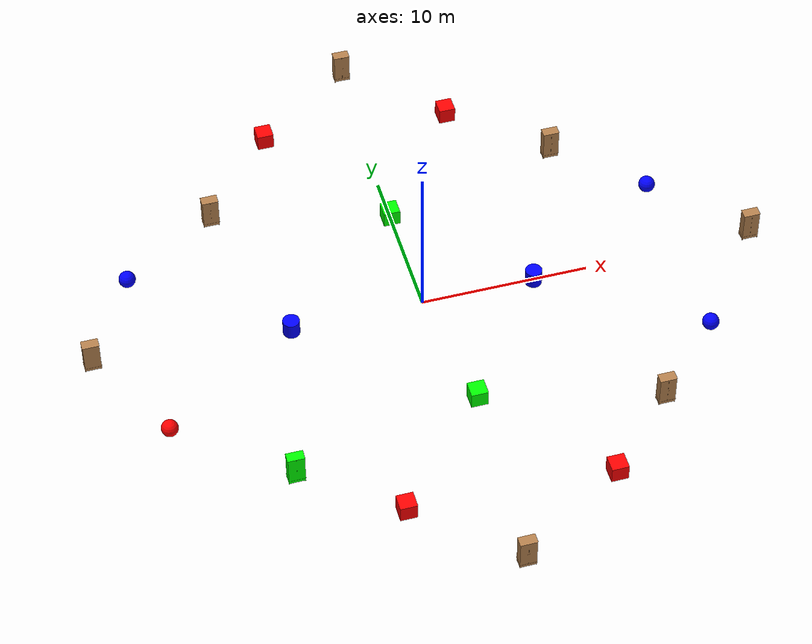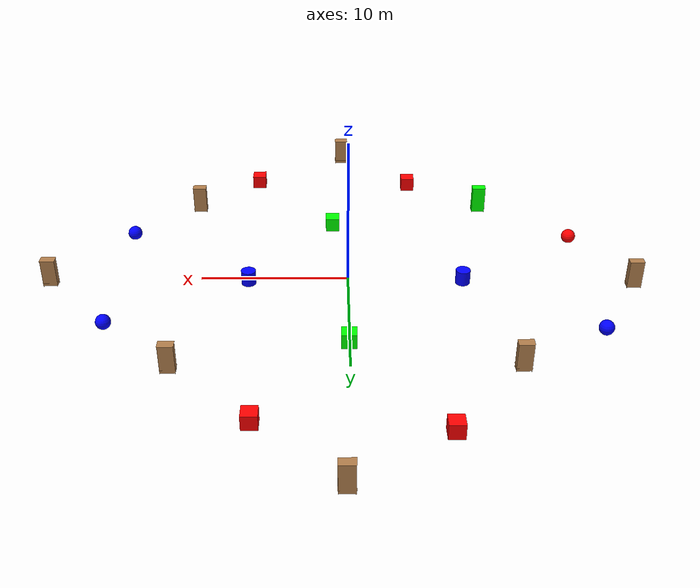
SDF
<?xml version='1.0'?>
<sdf version='1.6'>
  <model name='env3'>
    <link name='link_0'>
      <inertial>
        <mass>1</mass>
        <inertia>
          <ixx>0.145833</ixx>
          <ixy>0</ixy>
          <ixz>0</ixz>
          <iyy>0.145833</iyy>
          <iyz>0</iyz>
          <izz>0.125</izz>
        </inertia>
      </inertial>
      <pose frame=''>-7.84532 0.155592 0.2 0 -0 0</pose>
      <visual name='visual'>
        <pose frame=''>0 0 0 0 -0 0</pose>
        <geometry>
          <cylinder>
            <radius>0.5</radius>
            <length>1</length>
          </cylinder>
        </geometry>
          <material> <!-- Blue -->
            <ambient>0 0 1 1</ambient>
            <diffuse>0 0 1 1</diffuse>
            <specular>0 0 0 0</specular>
            <emissive>0 0 0 0</emissive>
          </material>
        <transparency>0</transparency>
        <cast_shadows>1</cast_shadows>
      </visual>
      <collision name='collision'>
        <laser_retro>0</laser_retro>
        <max_contacts>10</max_contacts>
        <pose frame=''>0 0 0 0 -0 0</pose>
        <geometry>
          <cylinder>
            <radius>0.5</radius>
            <length>1</length>
          </cylinder>
        </geometry>
        <surface>
          <friction>
            <ode>
              <mu>1</mu>
              <mu2>1</mu2>
              <fdir1>0 0 0</fdir1>
              <slip1>0</slip1>
              <slip2>0</slip2>
            </ode>
            <torsional>
              <coefficient>1</coefficient>
              <patch_radius>0</patch_radius>
              <surface_radius>0</surface_radius>
              <use_patch_radius>1</use_patch_radius>
              <ode>
                <slip>0</slip>
              </ode>
            </torsional>
          </friction>
          <bounce>
            <restitution_coefficient>0</restitution_coefficient>
            <threshold>1e+06</threshold>
          </bounce>
          <contact>
            <collide_without_contact>0</collide_without_contact>
            <collide_without_contact_bitmask>1</collide_without_contact_bitmask>
            <collide_bitmask>1</collide_bitmask>
            <ode>
              <soft_cfm>0</soft_cfm>
              <soft_erp>0.2</soft_erp>
              <kp>1e+13</kp>
              <kd>1</kd>
              <max_vel>0.01</max_vel>
              <min_depth>0</min_depth>
            </ode>
            <bullet>
              <split_impulse>1</split_impulse>
              <split_impulse_penetration_threshold>-0.01</split_impulse_penetration_threshold>
              <soft_cfm>0</soft_cfm>
              <soft_erp>0.2</soft_erp>
              <kp>1e+13</kp>
              <kd>1</kd>
            </bullet>
          </contact>
        </surface>
      </collision>
    </link>
    <link name='link_1'>
      <inertial>
        <mass>1</mass>
        <inertia>
          <ixx>0.145833</ixx>
          <ixy>0</ixy>
          <ixz>0</ixz>
          <iyy>0.145833</iyy>
          <iyz>0</iyz>
          <izz>0.125</izz>
        </inertia>
      </inertial>
      <pose frame=''>6.80226 0.097561 0.2 0 -0 0</pose>
      <visual name='visual'>
        <pose frame=''>0 0 0 0 -0 0</pose>
        <geometry>
          <cylinder>
            <radius>0.5</radius>
            <length>1</length>
          </cylinder>
        </geometry>
          <material> <!-- Blue -->
            <ambient>0 0 1 1</ambient>
            <diffuse>0 0 1 1</diffuse>
            <specular>0 0 0 0</specular>
            <emissive>0 0 0 0</emissive>
          </material>
        <transparency>0</transparency>
        <cast_shadows>1</cast_shadows>
      </visual>
      <collision name='collision'>
        <laser_retro>0</laser_retro>
        <max_contacts>10</max_contacts>
        <pose frame=''>0 0 0 0 -0 0</pose>
        <geometry>
          <cylinder>
            <radius>0.5</radius>
            <length>1</length>
          </cylinder>
        </geometry>
        <surface>
          <friction>
            <ode>
              <mu>1</mu>
              <mu2>1</mu2>
              <fdir1>0 0 0</fdir1>
              <slip1>0</slip1>
              <slip2>0</slip2>
            </ode>
            <torsional>
              <coefficient>1</coefficient>
              <patch_radius>0</patch_radius>
              <surface_radius>0</surface_radius>
              <use_patch_radius>1</use_patch_radius>
              <ode>
                <slip>0</slip>
              </ode>
            </torsional>
          </friction>
          <bounce>
            <restitution_coefficient>0</restitution_coefficient>
            <threshold>1e+06</threshold>
          </bounce>
          <contact>
            <collide_without_contact>0</collide_without_contact>
            <collide_without_contact_bitmask>1</collide_without_contact_bitmask>
            <collide_bitmask>1</collide_bitmask>
            <ode>
              <soft_cfm>0</soft_cfm>
              <soft_erp>0.2</soft_erp>
              <kp>1e+13</kp>
              <kd>1</kd>
              <max_vel>0.01</max_vel>
              <min_depth>0</min_depth>
            </ode>
            <bullet>
              <split_impulse>1</split_impulse>
              <split_impulse_penetration_threshold>-0.01</split_impulse_penetration_threshold>
              <soft_cfm>0</soft_cfm>
              <soft_erp>0.2</soft_erp>
              <kp>1e+13</kp>
              <kd>1</kd>
            </bullet>
          </contact>
        </surface>
      </collision>
    </link>
    <link name='link_10'>
      <inertial>
        <mass>1</mass>
        <inertia>
          <ixx>0.1</ixx>
          <ixy>0</ixy>
          <ixz>0</ixz>
          <iyy>0.1</iyy>
          <iyz>0</iyz>
          <izz>0.1</izz>
        </inertia>
      </inertial>
      <pose frame=''>15.6812 5.44137 0.2 0 -0 0</pose>
      <visual name='visual'>
        <pose frame=''>0 0 0 0 -0 0</pose>
        <geometry>
          <sphere>
            <radius>0.5</radius>
          </sphere>
        </geometry>
          <material> <!-- Blue -->
            <ambient>0 0 1 1</ambient>
            <diffuse>0 0 1 1</diffuse>
            <specular>0 0 0 0</specular>
            <emissive>0 0 0 0</emissive>
          </material>
        <transparency>0</transparency>
        <cast_shadows>1</cast_shadows>
      </visual>
      <collision name='collision'>
        <laser_retro>0</laser_retro>
        <max_contacts>10</max_contacts>
        <pose frame=''>0 0 0 0 -0 0</pose>
        <geometry>
          <sphere>
            <radius>0.5</radius>
          </sphere>
        </geometry>
        <surface>
          <friction>
            <ode>
              <mu>1</mu>
              <mu2>1</mu2>
              <fdir1>0 0 0</fdir1>
              <slip1>0</slip1>
              <slip2>0</slip2>
            </ode>
            <torsional>
              <coefficient>1</coefficient>
              <patch_radius>0</patch_radius>
              <surface_radius>0</surface_radius>
              <use_patch_radius>1</use_patch_radius>
              <ode>
                <slip>0</slip>
              </ode>
            </torsional>
          </friction>
          <bounce>
            <restitution_coefficient>0</restitution_coefficient>
            <threshold>1e+06</threshold>
          </bounce>
          <contact>
            <collide_without_contact>0</collide_without_contact>
            <collide_without_contact_bitmask>1</collide_without_contact_bitmask>
            <collide_bitmask>1</collide_bitmask>
            <ode>
              <soft_cfm>0</soft_cfm>
              <soft_erp>0.2</soft_erp>
              <kp>1e+13</kp>
              <kd>1</kd>
              <max_vel>0.01</max_vel>
              <min_depth>0</min_depth>
            </ode>
            <bullet>
              <split_impulse>1</split_impulse>
              <split_impulse_penetration_threshold>-0.01</split_impulse_penetration_threshold>
              <soft_cfm>0</soft_cfm>
              <soft_erp>0.2</soft_erp>
              <kp>1e+13</kp>
              <kd>1</kd>
            </bullet>
          </contact>
        </surface>
      </collision>
    </link>
    <link name='link_11'>
      <inertial>
        <mass>1</mass>
        <inertia>
          <ixx>0.1</ixx>
          <ixy>0</ixy>
          <ixz>0</ixz>
          <iyy>0.1</iyy>
          <iyz>0</iyz>
          <izz>0.1</izz>
        </inertia>
      </inertial>
      <pose frame=''>15.5898 -6.13688 0.2 0 -0 0</pose>
      <visual name='visual'>
        <pose frame=''>0 0 0 0 -0 0</pose>
        <geometry>
          <sphere>
            <radius>0.5</radius>
          </sphere>
        </geometry>
          <material> <!-- Blue -->
            <ambient>0 0 1 1</ambient>
            <diffuse>0 0 1 1</diffuse>
            <specular>0 0 0 0</specular>
            <emissive>0 0 0 0</emissive>
          </material>
        <transparency>0</transparency>
        <cast_shadows>1</cast_shadows>
      </visual>
      <collision name='collision'>
        <laser_retro>0</laser_retro>
        <max_contacts>10</max_contacts>
        <pose frame=''>0 0 0 0 -0 0</pose>
        <geometry>
          <sphere>
            <radius>0.5</radius>
          </sphere>
        </geometry>
        <surface>
          <friction>
            <ode>
              <mu>1</mu>
              <mu2>1</mu2>
              <fdir1>0 0 0</fdir1>
              <slip1>0</slip1>
              <slip2>0</slip2>
            </ode>
            <torsional>
              <coefficient>1</coefficient>
              <patch_radius>0</patch_radius>
              <surface_radius>0</surface_radius>
              <use_patch_radius>1</use_patch_radius>
              <ode>
                <slip>0</slip>
              </ode>
            </torsional>
          </friction>
          <bounce>
            <restitution_coefficient>0</restitution_coefficient>
            <threshold>1e+06</threshold>
          </bounce>
          <contact>
            <collide_without_contact>0</collide_without_contact>
            <collide_without_contact_bitmask>1</collide_without_contact_bitmask>
            <collide_bitmask>1</collide_bitmask>
            <ode>
              <soft_cfm>0</soft_cfm>
              <soft_erp>0.2</soft_erp>
              <kp>1e+13</kp>
              <kd>1</kd>
              <max_vel>0.01</max_vel>
              <min_depth>0</min_depth>
            </ode>
            <bullet>
              <split_impulse>1</split_impulse>
              <split_impulse_penetration_threshold>-0.01</split_impulse_penetration_threshold>
              <soft_cfm>0</soft_cfm>
              <soft_erp>0.2</soft_erp>
              <kp>1e+13</kp>
              <kd>1</kd>
            </bullet>
          </contact>
        </surface>
      </collision>
    </link>
    <link name='link_2'>
      <inertial>
        <mass>1</mass>
        <inertia>
          <ixx>0.166667</ixx>
          <ixy>0</ixy>
          <ixz>0</ixz>
          <iyy>0.166667</iyy>
          <iyz>0</iyz>
          <izz>0.166667</izz>
        </inertia>
      </inertial>
      <pose frame=''>1.04458 -7.65742 0.2 0 -0 0</pose>
      <visual name='visual'>
        <pose frame=''>0 0 0 0 -0 0</pose>
        <geometry>
          <box>
            <size>1 1 1</size>
          </box>
        </geometry>
          <material> <!-- Green -->
            <ambient>0 1 0 1</ambient>
            <diffuse>0 1 0 1</diffuse>
            <specular>0 0 0 0</specular>
            <emissive>0 0 0 0</emissive>
          </material>
        <transparency>0</transparency>
        <cast_shadows>1</cast_shadows>
      </visual>
      <collision name='collision'>
        <laser_retro>0</laser_retro>
        <max_contacts>10</max_contacts>
        <pose frame=''>0 0 0 0 -0 0</pose>
        <geometry>
          <box>
            <size>1 1 1</size>
          </box>
        </geometry>
        <surface>
          <friction>
            <ode>
              <mu>1</mu>
              <mu2>1</mu2>
              <fdir1>0 0 0</fdir1>
              <slip1>0</slip1>
              <slip2>0</slip2>
            </ode>
            <torsional>
              <coefficient>1</coefficient>
              <patch_radius>0</patch_radius>
              <surface_radius>0</surface_radius>
              <use_patch_radius>1</use_patch_radius>
              <ode>
                <slip>0</slip>
              </ode>
            </torsional>
          </friction>
          <bounce>
            <restitution_coefficient>0</restitution_coefficient>
            <threshold>1e+06</threshold>
          </bounce>
          <contact>
            <collide_without_contact>0</collide_without_contact>
            <collide_without_contact_bitmask>1</collide_without_contact_bitmask>
            <collide_bitmask>1</collide_bitmask>
            <ode>
              <soft_cfm>0</soft_cfm>
              <soft_erp>0.2</soft_erp>
              <kp>1e+13</kp>
              <kd>1</kd>
              <max_vel>0.01</max_vel>
              <min_depth>0</min_depth>
            </ode>
            <bullet>
              <split_impulse>1</split_impulse>
              <split_impulse_penetration_threshold>-0.01</split_impulse_penetration_threshold>
              <soft_cfm>0</soft_cfm>
              <soft_erp>0.2</soft_erp>
              <kp>1e+13</kp>
              <kd>1</kd>
            </bullet>
          </contact>
        </surface>
      </collision>
    </link>
    <link name='link_3'>
      <inertial>
        <mass>1</mass>
        <inertia>
          <ixx>0.166667</ixx>
          <ixy>0</ixy>
          <ixz>0</ixz>
          <iyy>0.166667</iyy>
          <iyz>0</iyz>
          <izz>0.166667</izz>
        </inertia>
      </inertial>
      <pose frame=''>0.042945 7.33737 0.2 0 -0 0</pose>
      <visual name='visual'>
        <pose frame=''>0 0 0 0 -0 0</pose>
        <geometry>
          <box>
            <size>1 1 1</size>
          </box>
        </geometry>
          <material> <!-- Green -->
            <ambient>0 1 0 1</ambient>
            <diffuse>0 1 0 1</diffuse>
            <specular>0 0 0 0</specular>
            <emissive>0 0 0 0</emissive>
          </material>
        <transparency>0</transparency>
        <cast_shadows>1</cast_shadows>
      </visual>
      <collision name='collision'>
        <laser_retro>0</laser_retro>
        <max_contacts>10</max_contacts>
        <pose frame=''>0 0 0 0 -0 0</pose>
        <geometry>
          <box>
            <size>1 1 1</size>
          </box>
        </geometry>
        <surface>
          <friction>
            <ode>
              <mu>1</mu>
              <mu2>1</mu2>
              <fdir1>0 0 0</fdir1>
              <slip1>0</slip1>
              <slip2>0</slip2>
            </ode>
            <torsional>
              <coefficient>1</coefficient>
              <patch_radius>0</patch_radius>
              <surface_radius>0</surface_radius>
              <use_patch_radius>1</use_patch_radius>
              <ode>
                <slip>0</slip>
              </ode>
            </torsional>
          </friction>
          <bounce>
            <restitution_coefficient>0</restitution_coefficient>
            <threshold>1e+06</threshold>
          </bounce>
          <contact>
            <collide_without_contact>0</collide_without_contact>
            <collide_without_contact_bitmask>1</collide_without_contact_bitmask>
            <collide_bitmask>1</collide_bitmask>
            <ode>
              <soft_cfm>0</soft_cfm>
              <soft_erp>0.2</soft_erp>
              <kp>1e+13</kp>
              <kd>1</kd>
              <max_vel>0.01</max_vel>
              <min_depth>0</min_depth>
            </ode>
            <bullet>
              <split_impulse>1</split_impulse>
              <split_impulse_penetration_threshold>-0.01</split_impulse_penetration_threshold>
              <soft_cfm>0</soft_cfm>
              <soft_erp>0.2</soft_erp>
              <kp>1e+13</kp>
              <kd>1</kd>
            </bullet>
          </contact>
        </surface>
      </collision>
    </link>
    <link name='link_4'>
      <inertial>
        <mass>1</mass>
        <inertia>
          <ixx>0.166667</ixx>
          <ixy>0</ixy>
          <ixz>0</ixz>
          <iyy>0.166667</iyy>
          <iyz>0</iyz>
          <izz>0.166667</izz>
        </inertia>
      </inertial>
      <pose frame=''>-4.96648 -14.2912 0.2 0 -0 0</pose>
      <visual name='visual'>
        <pose frame=''>0 0 0 0 -0 0</pose>
        <geometry>
          <box>
            <size>1 1 1</size>
          </box>
        </geometry>
          <material> <!-- Red -->
            <ambient>1 0 0 1</ambient>
            <diffuse>1 0 0 1</diffuse>
            <specular>0 0 0 0</specular>
            <emissive>0 0 0 0</emissive>
          </material>
        <transparency>0</transparency>
        <cast_shadows>1</cast_shadows>
      </visual>
      <collision name='collision'>
        <laser_retro>0</laser_retro>
        <max_contacts>10</max_contacts>
        <pose frame=''>0 0 0 0 -0 0</pose>
        <geometry>
          <box>
            <size>1 1 1</size>
          </box>
        </geometry>
        <surface>
          <friction>
            <ode>
              <mu>1</mu>
              <mu2>1</mu2>
              <fdir1>0 0 0</fdir1>
              <slip1>0</slip1>
              <slip2>0</slip2>
            </ode>
            <torsional>
              <coefficient>1</coefficient>
              <patch_radius>0</patch_radius>
              <surface_radius>0</surface_radius>
              <use_patch_radius>1</use_patch_radius>
              <ode>
                <slip>0</slip>
              </ode>
            </torsional>
          </friction>
          <bounce>
            <restitution_coefficient>0</restitution_coefficient>
            <threshold>1e+06</threshold>
          </bounce>
          <contact>
            <collide_without_contact>0</collide_without_contact>
            <collide_without_contact_bitmask>1</collide_without_contact_bitmask>
            <collide_bitmask>1</collide_bitmask>
            <ode>
              <soft_cfm>0</soft_cfm>
              <soft_erp>0.2</soft_erp>
              <kp>1e+13</kp>
              <kd>1</kd>
              <max_vel>0.01</max_vel>
              <min_depth>0</min_depth>
            </ode>
            <bullet>
              <split_impulse>1</split_impulse>
              <split_impulse_penetration_threshold>-0.01</split_impulse_penetration_threshold>
              <soft_cfm>0</soft_cfm>
              <soft_erp>0.2</soft_erp>
              <kp>1e+13</kp>
              <kd>1</kd>
            </bullet>
          </contact>
        </surface>
      </collision>
    </link>
    <link name='link_5'>
      <inertial>
        <mass>1</mass>
        <inertia>
          <ixx>0.166667</ixx>
          <ixy>0</ixy>
          <ixz>0</ixz>
          <iyy>0.166667</iyy>
          <iyz>0</iyz>
          <izz>0.166667</izz>
        </inertia>
      </inertial>
      <pose frame=''>6.9447 -14.881 0.2 0 -0 0</pose>
      <visual name='visual'>
        <pose frame=''>0 0 0 0 -0 0</pose>
        <geometry>
          <box>
            <size>1 1 1</size>
          </box>
        </geometry>
          <material> <!-- Red -->
            <ambient>1 0 0 1</ambient>
            <diffuse>1 0 0 1</diffuse>
            <specular>0 0 0 0</specular>
            <emissive>0 0 0 0</emissive>
          </material>
        <transparency>0</transparency>
        <cast_shadows>1</cast_shadows>
      </visual>
      <collision name='collision'>
        <laser_retro>0</laser_retro>
        <max_contacts>10</max_contacts>
        <pose frame=''>0 0 0 0 -0 0</pose>
        <geometry>
          <box>
            <size>1 1 1</size>
          </box>
        </geometry>
        <surface>
          <friction>
            <ode>
              <mu>1</mu>
              <mu2>1</mu2>
              <fdir1>0 0 0</fdir1>
              <slip1>0</slip1>
              <slip2>0</slip2>
            </ode>
            <torsional>
              <coefficient>1</coefficient>
              <patch_radius>0</patch_radius>
              <surface_radius>0</surface_radius>
              <use_patch_radius>1</use_patch_radius>
              <ode>
                <slip>0</slip>
              </ode>
            </torsional>
          </friction>
          <bounce>
            <restitution_coefficient>0</restitution_coefficient>
            <threshold>1e+06</threshold>
          </bounce>
          <contact>
            <collide_without_contact>0</collide_without_contact>
            <collide_without_contact_bitmask>1</collide_without_contact_bitmask>
            <collide_bitmask>1</collide_bitmask>
            <ode>
              <soft_cfm>0</soft_cfm>
              <soft_erp>0.2</soft_erp>
              <kp>1e+13</kp>
              <kd>1</kd>
              <max_vel>0.01</max_vel>
              <min_depth>0</min_depth>
            </ode>
            <bullet>
              <split_impulse>1</split_impulse>
              <split_impulse_penetration_threshold>-0.01</split_impulse_penetration_threshold>
              <soft_cfm>0</soft_cfm>
              <soft_erp>0.2</soft_erp>
              <kp>1e+13</kp>
              <kd>1</kd>
            </bullet>
          </contact>
        </surface>
      </collision>
    </link>
    <link name='link_6'>
      <inertial>
        <mass>1</mass>
        <inertia>
          <ixx>0.166667</ixx>
          <ixy>0</ixy>
          <ixz>0</ixz>
          <iyy>0.166667</iyy>
          <iyz>0</iyz>
          <izz>0.166667</izz>
        </inertia>
      </inertial>
      <pose frame=''>-5.70668 15.7746 0.2 0 -0 0</pose>
      <visual name='visual'>
        <pose frame=''>0 0 0 0 -0 0</pose>
        <geometry>
          <box>
            <size>1 1 1</size>
          </box>
        </geometry>
          <material> <!-- Red -->
            <ambient>1 0 0 1</ambient>
            <diffuse>1 0 0 1</diffuse>
            <specular>0 0 0 0</specular>
            <emissive>0 0 0 0</emissive>
          </material>
        <transparency>0</transparency>
        <cast_shadows>1</cast_shadows>
      </visual>
      <collision name='collision'>
        <laser_retro>0</laser_retro>
        <max_contacts>10</max_contacts>
        <pose frame=''>0 0 0 0 -0 0</pose>
        <geometry>
          <box>
            <size>1 1 1</size>
          </box>
        </geometry>
        <surface>
          <friction>
            <ode>
              <mu>1</mu>
              <mu2>1</mu2>
              <fdir1>0 0 0</fdir1>
              <slip1>0</slip1>
              <slip2>0</slip2>
            </ode>
            <torsional>
              <coefficient>1</coefficient>
              <patch_radius>0</patch_radius>
              <surface_radius>0</surface_radius>
              <use_patch_radius>1</use_patch_radius>
              <ode>
                <slip>0</slip>
              </ode>
            </torsional>
          </friction>
          <bounce>
            <restitution_coefficient>0</restitution_coefficient>
            <threshold>1e+06</threshold>
          </bounce>
          <contact>
            <collide_without_contact>0</collide_without_contact>
            <collide_without_contact_bitmask>1</collide_without_contact_bitmask>
            <collide_bitmask>1</collide_bitmask>
            <ode>
              <soft_cfm>0</soft_cfm>
              <soft_erp>0.2</soft_erp>
              <kp>1e+13</kp>
              <kd>1</kd>
              <max_vel>0.01</max_vel>
              <min_depth>0</min_depth>
            </ode>
            <bullet>
              <split_impulse>1</split_impulse>
              <split_impulse_penetration_threshold>-0.01</split_impulse_penetration_threshold>
              <soft_cfm>0</soft_cfm>
              <soft_erp>0.2</soft_erp>
              <kp>1e+13</kp>
              <kd>1</kd>
            </bullet>
          </contact>
        </surface>
      </collision>
    </link>
    <link name='link_7'>
      <inertial>
        <mass>1</mass>
        <inertia>
          <ixx>0.166667</ixx>
          <ixy>0</ixy>
          <ixz>0</ixz>
          <iyy>0.166667</iyy>
          <iyz>0</iyz>
          <izz>0.166667</izz>
        </inertia>
      </inertial>
      <pose frame=''>5.69907 14.9452 0.2 0 -0 0</pose>
      <visual name='visual'>
        <pose frame=''>0 0 0 0 -0 0</pose>
        <geometry>
          <box>
            <size>1 1 1</size>
          </box>
        </geometry>
          <material> <!-- Red -->
            <ambient>1 0 0 1</ambient>
            <diffuse>1 0 0 1</diffuse>
            <specular>0 0 0 0</specular>
            <emissive>0 0 0 0</emissive>
          </material>
        <transparency>0</transparency>
        <cast_shadows>1</cast_shadows>
      </visual>
      <collision name='collision'>
        <laser_retro>0</laser_retro>
        <max_contacts>10</max_contacts>
        <pose frame=''>0 0 0 0 -0 0</pose>
        <geometry>
          <box>
            <size>1 1 1</size>
          </box>
        </geometry>
        <surface>
          <friction>
            <ode>
              <mu>1</mu>
              <mu2>1</mu2>
              <fdir1>0 0 0</fdir1>
              <slip1>0</slip1>
              <slip2>0</slip2>
            </ode>
            <torsional>
              <coefficient>1</coefficient>
              <patch_radius>0</patch_radius>
              <surface_radius>0</surface_radius>
              <use_patch_radius>1</use_patch_radius>
              <ode>
                <slip>0</slip>
              </ode>
            </torsional>
          </friction>
          <bounce>
            <restitution_coefficient>0</restitution_coefficient>
            <threshold>1e+06</threshold>
          </bounce>
          <contact>
            <collide_without_contact>0</collide_without_contact>
            <collide_without_contact_bitmask>1</collide_without_contact_bitmask>
            <collide_bitmask>1</collide_bitmask>
            <ode>
              <soft_cfm>0</soft_cfm>
              <soft_erp>0.2</soft_erp>
              <kp>1e+13</kp>
              <kd>1</kd>
              <max_vel>0.01</max_vel>
              <min_depth>0</min_depth>
            </ode>
            <bullet>
              <split_impulse>1</split_impulse>
              <split_impulse_penetration_threshold>-0.01</split_impulse_penetration_threshold>
              <soft_cfm>0</soft_cfm>
              <soft_erp>0.2</soft_erp>
              <kp>1e+13</kp>
              <kd>1</kd>
            </bullet>
          </contact>
        </surface>
      </collision>
    </link>
    <link name='link_8'>
      <inertial>
        <mass>1</mass>
        <inertia>
          <ixx>0.1</ixx>
          <ixy>0</ixy>
          <ixz>0</ixz>
          <iyy>0.1</iyy>
          <iyz>0</iyz>
          <izz>0.1</izz>
        </inertia>
      </inertial>
      <pose frame=''>-16.2247 6.38321 0.2 0 -0 0</pose>
      <visual name='visual'>
        <pose frame=''>0 0 0 0 -0 0</pose>
        <geometry>
          <sphere>
            <radius>0.5</radius>
          </sphere>
        </geometry>
          <material> <!-- Blue -->
            <ambient>0 0 1 1</ambient>
            <diffuse>0 0 1 1</diffuse>
            <specular>0 0 0 0</specular>
            <emissive>0 0 0 0</emissive>
          </material>
        <transparency>0</transparency>
        <cast_shadows>1</cast_shadows>
      </visual>
      <collision name='collision'>
        <laser_retro>0</laser_retro>
        <max_contacts>10</max_contacts>
        <pose frame=''>0 0 0 0 -0 0</pose>
        <geometry>
          <sphere>
            <radius>0.5</radius>
          </sphere>
        </geometry>
        <surface>
          <friction>
            <ode>
              <mu>1</mu>
              <mu2>1</mu2>
              <fdir1>0 0 0</fdir1>
              <slip1>0</slip1>
              <slip2>0</slip2>
            </ode>
            <torsional>
              <coefficient>1</coefficient>
              <patch_radius>0</patch_radius>
              <surface_radius>0</surface_radius>
              <use_patch_radius>1</use_patch_radius>
              <ode>
                <slip>0</slip>
              </ode>
            </torsional>
          </friction>
          <bounce>
            <restitution_coefficient>0</restitution_coefficient>
            <threshold>1e+06</threshold>
          </bounce>
          <contact>
            <collide_without_contact>0</collide_without_contact>
            <collide_without_contact_bitmask>1</collide_without_contact_bitmask>
            <collide_bitmask>1</collide_bitmask>
            <ode>
              <soft_cfm>0</soft_cfm>
              <soft_erp>0.2</soft_erp>
              <kp>1e+13</kp>
              <kd>1</kd>
              <max_vel>0.01</max_vel>
              <min_depth>0</min_depth>
            </ode>
            <bullet>
              <split_impulse>1</split_impulse>
              <split_impulse_penetration_threshold>-0.01</split_impulse_penetration_threshold>
              <soft_cfm>0</soft_cfm>
              <soft_erp>0.2</soft_erp>
              <kp>1e+13</kp>
              <kd>1</kd>
            </bullet>
          </contact>
        </surface>
      </collision>
    </link>
    <link name='link_9'>
      <inertial>
        <mass>1</mass>
        <inertia>
          <ixx>0.1</ixx>
          <ixy>0</ixy>
          <ixz>0</ixz>
          <iyy>0.1</iyy>
          <iyz>0</iyz>
          <izz>0.1</izz>
        </inertia>
      </inertial>
      <pose frame=''>-16.2002 -5.35106 0.2 0 -0 0</pose>
      <visual name='visual'>
        <pose frame=''>0 0 0 0 -0 0</pose>
        <geometry>
          <sphere>
            <radius>0.5</radius>
          </sphere>
        </geometry>
          <material> <!-- Red -->
            <ambient>1 0 0 1</ambient>
            <diffuse>1 0 0 1</diffuse>
            <specular>0 0 0 0</specular>
            <emissive>0 0 0 0</emissive>
          </material>
        <transparency>0</transparency>
        <cast_shadows>1</cast_shadows>
      </visual>
      <collision name='collision'>
        <laser_retro>0</laser_retro>
        <max_contacts>10</max_contacts>
        <pose frame=''>0 0 0 0 -0 0</pose>
        <geometry>
          <sphere>
            <radius>0.5</radius>
          </sphere>
        </geometry>
        <surface>
          <friction>
            <ode>
              <mu>1</mu>
              <mu2>1</mu2>
              <fdir1>0 0 0</fdir1>
              <slip1>0</slip1>
              <slip2>0</slip2>
            </ode>
            <torsional>
              <coefficient>1</coefficient>
              <patch_radius>0</patch_radius>
              <surface_radius>0</surface_radius>
              <use_patch_radius>1</use_patch_radius>
              <ode>
                <slip>0</slip>
              </ode>
            </torsional>
          </friction>
          <bounce>
            <restitution_coefficient>0</restitution_coefficient>
            <threshold>1e+06</threshold>
          </bounce>
          <contact>
            <collide_without_contact>0</collide_without_contact>
            <collide_without_contact_bitmask>1</collide_without_contact_bitmask>
            <collide_bitmask>1</collide_bitmask>
            <ode>
              <soft_cfm>0</soft_cfm>
              <soft_erp>0.2</soft_erp>
              <kp>1e+13</kp>
              <kd>1</kd>
              <max_vel>0.01</max_vel>
              <min_depth>0</min_depth>
            </ode>
            <bullet>
              <split_impulse>1</split_impulse>
              <split_impulse_penetration_threshold>-0.01</split_impulse_penetration_threshold>
              <soft_cfm>0</soft_cfm>
              <soft_erp>0.2</soft_erp>
              <kp>1e+13</kp>
              <kd>1</kd>
            </bullet>
          </contact>
        </surface>
      </collision>
    </link>
    <model name='wardrobe'>
      <static>1</static>
      <link name='link'>
        <collision name='colision1'>
          <pose frame=''>0 0 0 0 -0 0</pose>
          <geometry>
            <mesh>
              <uri>model://wardrobe/meshes/wardrobe.stl</uri>
              <scale>1 1 1</scale>
            </mesh>
          </geometry>
          <surface>
            <bounce/>
            <friction>
              <ode/>
            </friction>
            <contact>
              <ode/>
            </contact>
          </surface>
        </collision>
        <visual name='visual1'>
          <pose frame=''>0 0 0 0 -0 0</pose>
          <geometry>
            <mesh>
              <uri>model://wardrobe/meshes/wardrobe.stl</uri>
              <scale>1 1 1</scale>
            </mesh>
          </geometry>
          <material>
            <script>
              <uri>file://media/materials/scripts/gazebo.material</uri>
              <name>Gazebo/WoodPallet</name>
            </script>
          </material>
        </visual>
        <velocity_decay>
          <linear>0</linear>
          <angular>0</angular>
        </velocity_decay>
        <self_collide>0</self_collide>
        <kinematic>0</kinematic>
        <gravity>1</gravity>
      </link>
      <pose frame=''>10.7601 -10.9024 -0.3 0 -0 0</pose>
    </model>
    <model name='wardrobe_0'>
      <static>1</static>
      <link name='link'>
        <collision name='colision1'>
          <pose frame=''>0 0 0 0 -0 0</pose>
          <geometry>
            <mesh>
              <uri>model://wardrobe/meshes/wardrobe.stl</uri>
              <scale>1 1 1</scale>
            </mesh>
          </geometry>
          <surface>
            <bounce/>
            <friction>
              <ode/>
            </friction>
            <contact>
              <ode/>
            </contact>
          </surface>
        </collision>
        <visual name='visual1'>
          <pose frame=''>0 0 0 0 -0 0</pose>
          <geometry>
            <mesh>
              <uri>model://wardrobe/meshes/wardrobe.stl</uri>
              <scale>1 1 1</scale>
            </mesh>
          </geometry>
          <material>
            <script>
              <uri>file://media/materials/scripts/gazebo.material</uri>
              <name>Gazebo/WoodPallet</name>
            </script>
          </material>
        </visual>
        <velocity_decay>
          <linear>0</linear>
          <angular>0</angular>
        </velocity_decay>
        <self_collide>0</self_collide>
        <kinematic>0</kinematic>
        <gravity>1</gravity>
      </link>
      <pose frame=''>10.4371 9.67734 -0.3 0 -0 0</pose>
    </model>
    <model name='wardrobe_1'>
      <static>1</static>
      <link name='link'>
        <collision name='colision1'>
          <pose frame=''>0 0 0 0 -0 0</pose>
          <geometry>
            <mesh>
              <uri>model://wardrobe/meshes/wardrobe.stl</uri>
              <scale>1 1 1</scale>
            </mesh>
          </geometry>
          <surface>
            <bounce/>
            <friction>
              <ode/>
            </friction>
            <contact>
              <ode/>
            </contact>
          </surface>
        </collision>
        <visual name='visual1'>
          <pose frame=''>0 0 0 0 -0 0</pose>
          <geometry>
            <mesh>
              <uri>model://wardrobe/meshes/wardrobe.stl</uri>
              <scale>1 1 1</scale>
            </mesh>
          </geometry>
          <material> <!-- Green -->
            <ambient>0 1 0 1</ambient>
            <diffuse>0 1 0 1</diffuse>
            <specular>0 0 0 0</specular>
            <emissive>0 0 0 0</emissive>
          </material>
        </visual>
        <velocity_decay>
          <linear>0</linear>
          <angular>0</angular>
        </velocity_decay>
        <self_collide>0</self_collide>
        <kinematic>0</kinematic>
        <gravity>1</gravity>
      </link>
      <pose frame=''>-10.7003 -10.6977 -0.3 0 -0 0</pose>
    </model>
    <model name='wardrobe_2'>
      <static>1</static>
      <link name='link'>
        <collision name='colision1'>
          <pose frame=''>0 0 0 0 -0 0</pose>
          <geometry>
            <mesh>
              <uri>model://wardrobe/meshes/wardrobe.stl</uri>
              <scale>1 1 1</scale>
            </mesh>
          </geometry>
          <surface>
            <bounce/>
            <friction>
              <ode/>
            </friction>
            <contact>
              <ode/>
            </contact>
          </surface>
        </collision>
        <visual name='visual1'>
          <pose frame=''>0 0 0 0 -0 0</pose>
          <geometry>
            <mesh>
              <uri>model://wardrobe/meshes/wardrobe.stl</uri>
              <scale>1 1 1</scale>
            </mesh>
          </geometry>
          <material>
            <script>
              <uri>file://media/materials/scripts/gazebo.material</uri>
              <name>Gazebo/WoodPallet</name>
            </script>
          </material>
        </visual>
        <velocity_decay>
          <linear>0</linear>
          <angular>0</angular>
        </velocity_decay>
        <self_collide>0</self_collide>
        <kinematic>0</kinematic>
        <gravity>1</gravity>
      </link>
      <pose frame=''>-10.8933 9.67619 -0.3 0 -0 0</pose>
    </model>
    <model name='wardrobe_3'>
      <static>1</static>
      <link name='link'>
        <collision name='colision1'>
          <pose frame=''>0 0 0 0 -0 0</pose>
          <geometry>
            <mesh>
              <uri>model://wardrobe/meshes/wardrobe.stl</uri>
              <scale>1 1 1</scale>
            </mesh>
          </geometry>
          <surface>
            <bounce/>
            <friction>
              <ode/>
            </friction>
            <contact>
              <ode/>
            </contact>
          </surface>
        </collision>
        <visual name='visual1'>
          <pose frame=''>0 0 0 0 -0 0</pose>
          <geometry>
            <mesh>
              <uri>model://wardrobe/meshes/wardrobe.stl</uri>
              <scale>1 1 1</scale>
            </mesh>
          </geometry>
          <material>
            <script>
              <uri>file://media/materials/scripts/gazebo.material</uri>
              <name>Gazebo/WoodPallet</name>
            </script>
          </material>
        </visual>
        <velocity_decay>
          <linear>0</linear>
          <angular>0</angular>
        </velocity_decay>
        <self_collide>0</self_collide>
        <kinematic>0</kinematic>
        <gravity>1</gravity>
      </link>
      <pose frame=''>-0.181998 -19.6277 -0.3 0 -0 0</pose>
    </model>
    <model name='wardrobe_4'>
      <static>1</static>
      <link name='link'>
        <collision name='colision1'>
          <pose frame=''>0 0 0 0 -0 0</pose>
          <geometry>
            <mesh>
              <uri>model://wardrobe/meshes/wardrobe.stl</uri>
              <scale>1 1 1</scale>
            </mesh>
          </geometry>
          <surface>
            <bounce/>
            <friction>
              <ode/>
            </friction>
            <contact>
              <ode/>
            </contact>
          </surface>
        </collision>
        <visual name='visual1'>
          <pose frame=''>0 0 0 0 -0 0</pose>
          <geometry>
            <mesh>
              <uri>model://wardrobe/meshes/wardrobe.stl</uri>
              <scale>1 1 1</scale>
            </mesh>
          </geometry>
          <material>
            <script>
              <uri>file://media/materials/scripts/gazebo.material</uri>
              <name>Gazebo/WoodPallet</name>
            </script>
          </material>
        </visual>
        <velocity_decay>
          <linear>0</linear>
          <angular>0</angular>
        </velocity_decay>
        <self_collide>0</self_collide>
        <kinematic>0</kinematic>
        <gravity>1</gravity>
      </link>
      <pose frame=''>-0.147228 19.803 -0.3 0 -0 0</pose>
    </model>
    <model name='wardrobe_5'>
      <static>1</static>
      <link name='link'>
        <collision name='colision1'>
          <pose frame=''>0 0 0 0 -0 0</pose>
          <geometry>
            <mesh>
              <uri>model://wardrobe/meshes/wardrobe.stl</uri>
              <scale>1 1 1</scale>
            </mesh>
          </geometry>
          <surface>
            <bounce/>
            <friction>
              <ode/>
            </friction>
            <contact>
              <ode/>
            </contact>
          </surface>
        </collision>
        <visual name='visual1'>
          <pose frame=''>0 0 0 0 -0 0</pose>
          <geometry>
            <mesh>
              <uri>model://wardrobe/meshes/wardrobe.stl</uri>
              <scale>1 1 1</scale>
            </mesh>
          </geometry>
          <material>
            <script>
              <uri>file://media/materials/scripts/gazebo.material</uri>
              <name>Gazebo/WoodPallet</name>
            </script>
          </material>
        </visual>
        <velocity_decay>
          <linear>0</linear>
          <angular>0</angular>
        </velocity_decay>
        <self_collide>0</self_collide>
        <kinematic>0</kinematic>
        <gravity>1</gravity>
      </link>
      <pose frame=''>19.7877 -0.149624 -0.3 0 -0 0</pose>
    </model>
    <model name='wardrobe_6'>
      <static>1</static>
      <link name='link'>
        <collision name='colision1'>
          <pose frame=''>0 0 0 0 -0 0</pose>
          <geometry>
            <mesh>
              <uri>model://wardrobe/meshes/wardrobe.stl</uri>
              <scale>1 1 1</scale>
            </mesh>
          </geometry>
          <surface>
            <bounce/>
            <friction>
              <ode/>
            </friction>
            <contact>
              <ode/>
            </contact>
          </surface>
        </collision>
        <visual name='visual1'>
          <pose frame=''>0 0 0 0 -0 0</pose>
          <geometry>
            <mesh>
              <uri>model://wardrobe/meshes/wardrobe.stl</uri>
              <scale>1 1 1</scale>
            </mesh>
          </geometry>
          <material>
            <script>
              <uri>file://media/materials/scripts/gazebo.material</uri>
              <name>Gazebo/WoodPallet</name>
            </script>
          </material>
        </visual>
        <velocity_decay>
          <linear>0</linear>
          <angular>0</angular>
        </velocity_decay>
        <self_collide>0</self_collide>
        <kinematic>0</kinematic>
        <gravity>1</gravity>
      </link>
      <pose frame=''>-19.9233 0.403513 -0.3 0 -0 0</pose>
    </model>
    <static>0</static>
    <allow_auto_disable>1</allow_auto_disable>
  </model>
</sdf>
